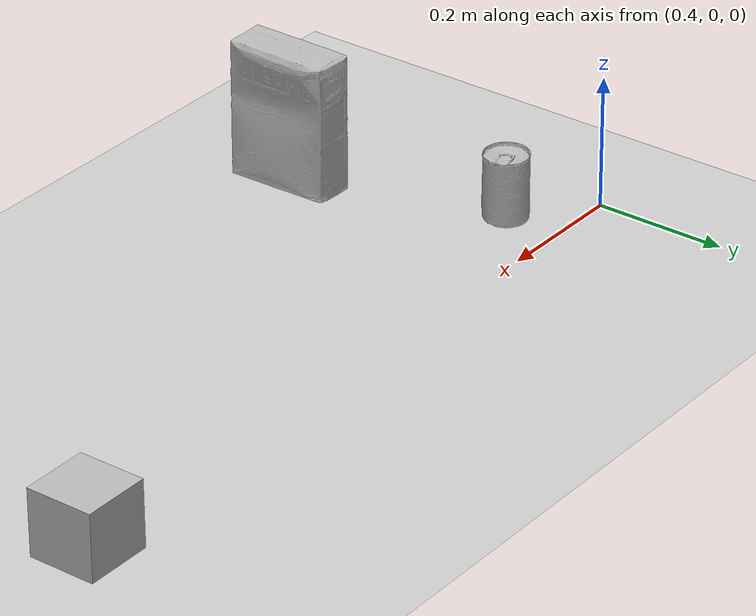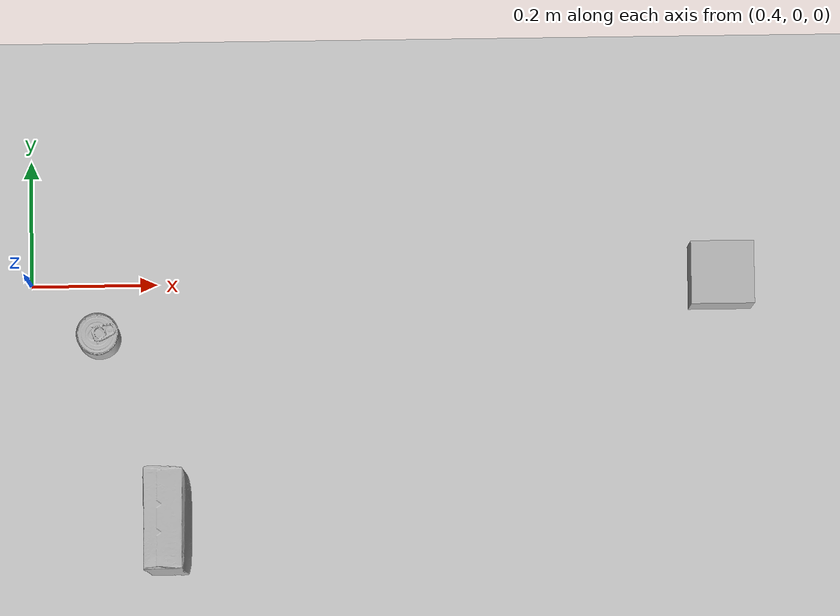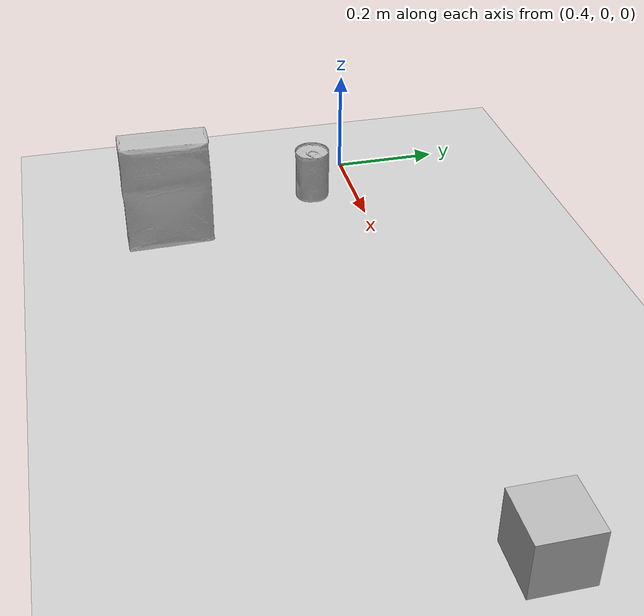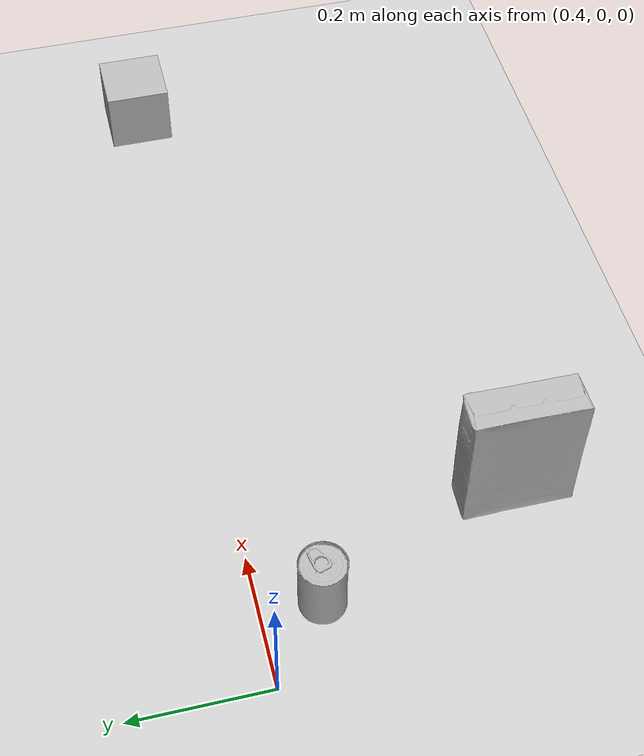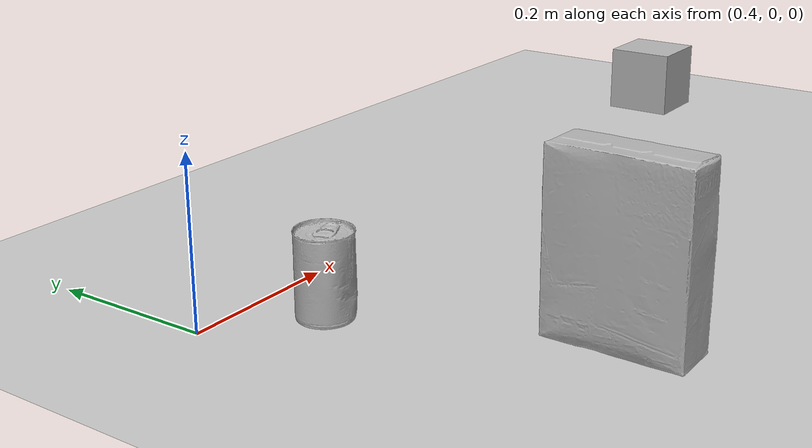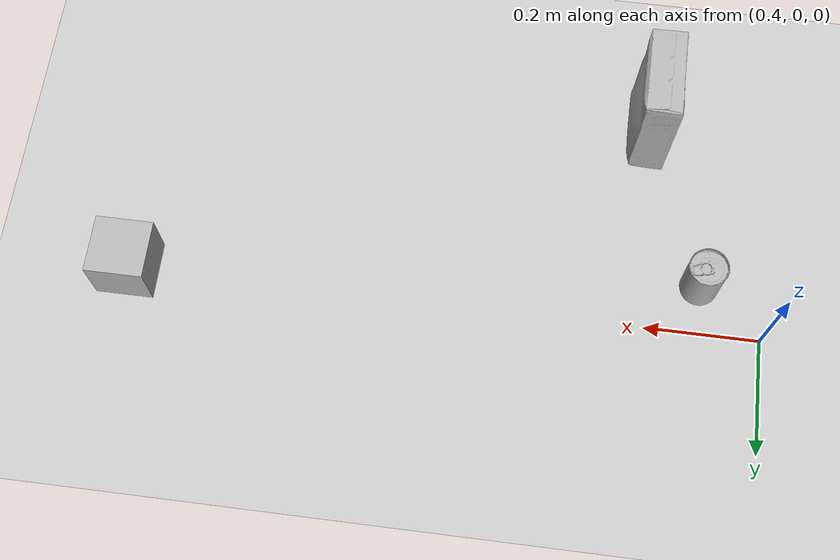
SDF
<?xml version="1.0" ?>
<sdf version="1.6">
  <world name="default">
    <include>
      <uri>model://ground_plane</uri>
    </include>

    <include>
      <uri>model://sun</uri>
    </include>

    <physics type="ode">
      <real_time_update_rate>1000.0</real_time_update_rate>
    </physics>

    <gravity>
      0.0 0.0 0.0
    </gravity>

    <gui fullscreen='0'>
    </gui>

    <model name='camera'>
      <pose>1.5 0 0.05 0 -0 3.1415926</pose>
      <link name='link'>
        <inertial>
          <mass>1</mass>
          <inertia>
            <ixx>0.000166667</ixx>
            <iyy>0.000166667</iyy>
            <izz>0.000166667</izz>
            <ixy>0</ixy>
            <ixz>0</ixz>
            <iyz>0</iyz>
          </inertia>
          <pose>0 0 0 0 -0 0</pose>
        </inertial>
        <collision name='collision'>
          <geometry>
            <box>
              <size>0.1 0.1 0.1</size>
            </box>
          </geometry>
          <max_contacts>10</max_contacts>
          <surface>
            <friction>
              <ode>
                <mu>10</mu>
                <mu2>10</mu2>
              </ode>
            </friction>
          </surface>
        </collision>
        <visual name='visual'>
          <geometry>
            <box>
              <size>0.1 0.1 0.1</size>
            </box>
          </geometry>
        </visual>
        <sensor name='camera' type='camera'>
          <camera>
            <horizontal_fov>1.047</horizontal_fov>
            <image>
              <width>1920</width>
              <height>1080</height>
            </image>
            <clip>
              <near>0.1</near>
              <far>100</far>
            </clip>
          </camera>
          <always_on>1</always_on>
          <update_rate>30</update_rate>
          <visualize>1</visualize>
          <plugin name="camera_controller" filename="libgazebo_ros_camera.so">
            <alwaysOn>true</alwaysOn>
            <updateRate>0.0</updateRate>
            <cameraName>firstcam/camera</cameraName>
            <imageTopicName>image_raw</imageTopicName>
            <cameraInfoTopicName>camera_info</cameraInfoTopicName>
            <frameName>camera_link_optical</frameName>
            <!-- setting hackBaseline to anything but 0.0 will cause a misalignment
                between the gazebo sensor image and the frame it is supposed to
                be attached to -->
            <hackBaseline>0.0</hackBaseline>
            <distortionK1>0.0</distortionK1>
            <distortionK2>0.0</distortionK2>
            <distortionK3>0.0</distortionK3>
            <distortionT1>0.0</distortionT1>
            <distortionT2>0.0</distortionT2>
            <CxPrime>0</CxPrime>
            <Cx>0.0</Cx>
            <Cy>0.0</Cy>
            <focalLength>0.0</focalLength>
          </plugin>
        </sensor>
        <self_collide>0</self_collide>
        <enable_wind>0</enable_wind>
        <kinematic>0</kinematic>
      </link>
    </model>

    <model name='tomato_soup_can'>
      <pose>0.5 0 0 0 -0 0</pose>
      <link name='tomato_soup_can_link'>
        <inertial>
          <mass>0.349</mass>
          <inertia>
            <ixx>0.000391694</ixx>
            <ixy>0</ixy>
            <ixz>0</ixz>
            <iyy>0.000391694</iyy>
            <iyz>0</iyz>
            <izz>0.00019003</izz>
          </inertia>
          <pose>0 0 0.0505 0 -0 0</pose>
        </inertial>
        <collision name='collision'>
          <pose>0 0 0.0505 0 -0 0</pose>
          <geometry>
            <cylinder>
              <radius>0.033</radius>
              <length>0.101</length>
            </cylinder>
          </geometry>
          <surface>
            <friction>
              <ode>
                <mu>1</mu>
              </ode>
            </friction>
          </surface>
          <max_contacts>100</max_contacts>
          <surface>
            <contact>
              <ode/>
            </contact>
            <bounce/>
            <friction>
              <torsional>
                <ode/>
              </torsional>
              <ode/>
            </friction>
          </surface>
        </collision>
        <visual name='visual'>
          <pose>0.01 -0.085 0 0 -0 0</pose>
          <geometry>
            <mesh>
              <uri>model://tomato_soup_can/meshes/textured.dae</uri>
            </mesh>
          </geometry>
        </visual>
        <self_collide>0</self_collide>
        <enable_wind>0</enable_wind>
        <kinematic>0</kinematic>
      </link>
      <plugin name="p3d_base_controller" filename="libgazebo_ros_p3d.so">
        <alwaysOn>true</alwaysOn>
        <updateRate>30.0</updateRate>
        <bodyName>tomato_soup_can_link</bodyName>
        <topicName>/odom/soup_can_pose</topicName>
        <gaussianNoise>0.01</gaussianNoise>
        <frameName>world</frameName>
        <xyzOffsets>0 0 0</xyzOffsets>
        <rpyOffsets>0 0 0</rpyOffsets>
      </plugin>
    </model>

    <model name='cracker_box'>
      <link name='cracker_box_link'>
        <inertial>
          <mass>0.411</mass>
          <inertia>
            <ixx>0.00236544</ixx>
            <ixy>0</ixy>
            <ixz>0</ixz>
            <iyy>0.00163372</iyy>
            <iyz>0</iyz>
            <izz>0.000978317</izz>
          </inertia>
          <pose>0 0 0.105 0 -0 0</pose>
        </inertial>
        <collision name='collision'>
          <pose>0 0 0.105 0 -0 0</pose>
          <geometry>
            <box>
              <size>0.06 0.158 0.21</size>
            </box>
          </geometry>
          <max_contacts>10</max_contacts>
          <surface>
            <contact>
              <ode/>
            </contact>
            <bounce/>
            <friction>
              <torsional>
                <ode/>
              </torsional>
              <ode/>
            </friction>
          </surface>
        </collision>
        <visual name='visual'>
          <pose>0.015 0.015 0 0 -0 0</pose>
          <geometry>
            <mesh>
              <uri>model://cracker_box/meshes/textured.dae</uri>
            </mesh>
          </geometry>
        </visual>
        <self_collide>0</self_collide>
        <enable_wind>0</enable_wind>
        <kinematic>0</kinematic>
      </link>
      <plugin name="move_unilinear" filename="libmove_unilinear.so">
        <link_name>cracker_box_link</link_name>
        <init_pose>0.6 -0.4 0.005 0 0 0</init_pose> <!-- rpy -->
        <direction>0 1 0</direction>
        <vel>0.03</vel>
        <max_distance>1</max_distance>
      </plugin>
      <pose>0.6 -0.4 0.005 0 0 -0 0</pose>
      <enable_wind>0</enable_wind>
    </model>

  </world>
</sdf>
